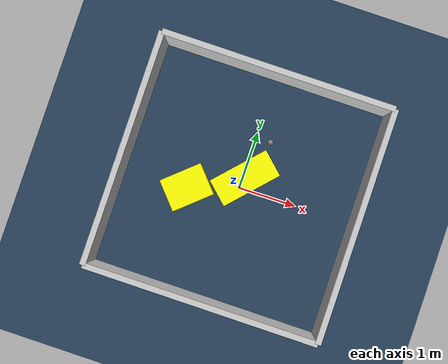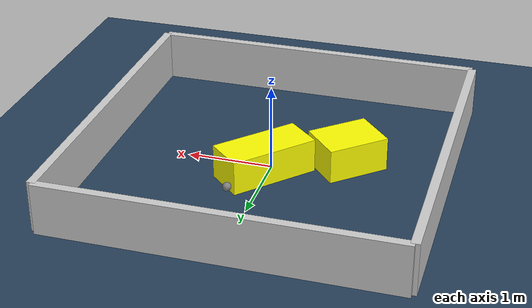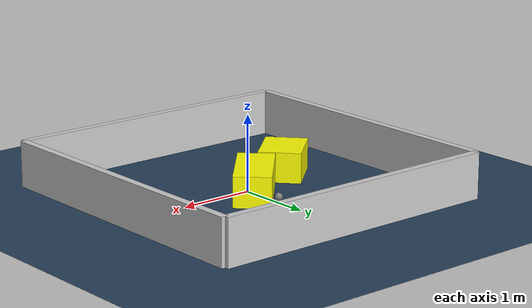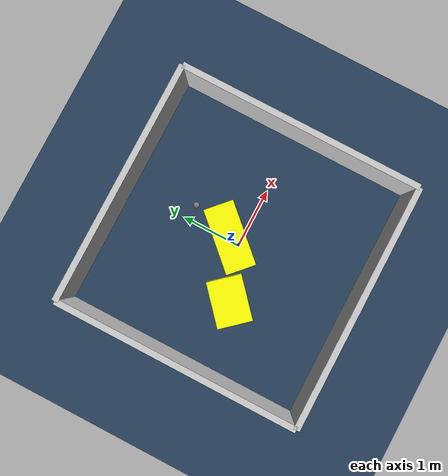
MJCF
<?xml version="1.0" ?>
<mujoco model="generated_environment">
  <option timestep="0.01" integrator="RK4" cone="elliptic"/>
  <default>
    <geom density="1"/>
  </default>
  <asset>
    <texture builtin="gradient" height="3072" rgb1="0.3 0.5 0.7" rgb2="0 0 0" type="skybox" width="512"/>
    <texture builtin="checker" height="300" mark="edge" markrgb="0.8 0.8 0.8" name="groundplane" rgb1="0.2 0.3 0.4" rgb2="0.1 0.2 0.3" type="2d" width="300"/>
    <material name="groundplane" reflectance="0.2" texrepeat="5 5" texture="groundplane" texuniform="true"/>
    <material name="robot" rgba="0.0 1.0 0.0 1"/>
  </asset>
  <worldbody>
    <light dir="0 0 -1" directional="true" pos="0 0 1.5"/>
    <geom condim="4" friction="1.0 0.005 0.001" material="groundplane" name="floor" size="0 0 0.05" type="plane"/>
    <body name="walls">
      <geom name="wall_1" condim="4" pos="-2.0 0.0 0.3" rgba="0.800000011920929 0.800000011920929 0.800000011920929 1.0" size="0.05 2.0 0.3" type="box"/>
      <geom name="wall_2" condim="4" pos="2.0 0.0 0.3" rgba="0.800000011920929 0.800000011920929 0.800000011920929 1.0" size="0.05 2.0 0.3" type="box"/>
      <geom name="wall_3" condim="4" pos="0.0 -2.0 0.3" rgba="0.800000011920929 0.800000011920929 0.800000011920929 1.0" size="2.0 0.05 0.3" type="box"/>
      <geom name="wall_4" condim="4" pos="0.0 2.0 0.3" rgba="0.800000011920929 0.800000011920929 0.800000011920929 1.0" size="2.0 0.05 0.3" type="box"/>
    </body>
    <body name="robot">
      <joint name="joint_x" type="slide" pos="0 0 0" axis="1 0 0"/>
      <joint name="joint_y" type="slide" pos="0 0 0" axis="0 1 0"/>
      <geom name="robot" type="sphere" pos="0.24940555748711635 0.8815859782874993 0.2" size="0.05" mass="5." friction="1.0 0.005 0.0001" condim="4"/>
      <site name="sensor_ball"/>
    </body>
    <body name="obstacle_1_movable">
      <geom name="obstacle_1_movable" condim="4" pos="-0.8290260898269672 -0.28072083680769366 0.2" euler="0 0 131.53857913694307" friction="1.0 0.005 0.001" rgba="1 1 0 1" size="0.27787468070857396 0.3659440273142785 0.2" type="box" mass="0.1"/>
      <joint type="free"/>
    </body>
    <body name="obstacle_2_movable">
      <geom name="obstacle_2_movable" condim="4" pos="0.036358944300864504 0.17006874281542017 0.2" euler="0 0 227.0912942893673" friction="1.0 0.005 0.001" rgba="1 1 0 1" size="0.5285151849440579 0.24145103459431883 0.2" type="box" mass="0.1"/>
      <joint type="free"/>
    </body>
  </worldbody>
  <actuator>
    <motor name="actuator_x" joint="joint_x" gear="1" ctrlrange="-1 1"/>
    <motor name="actuator_y" joint="joint_y" gear="1" ctrlrange="-1 1"/>
  </actuator>
</mujoco>
